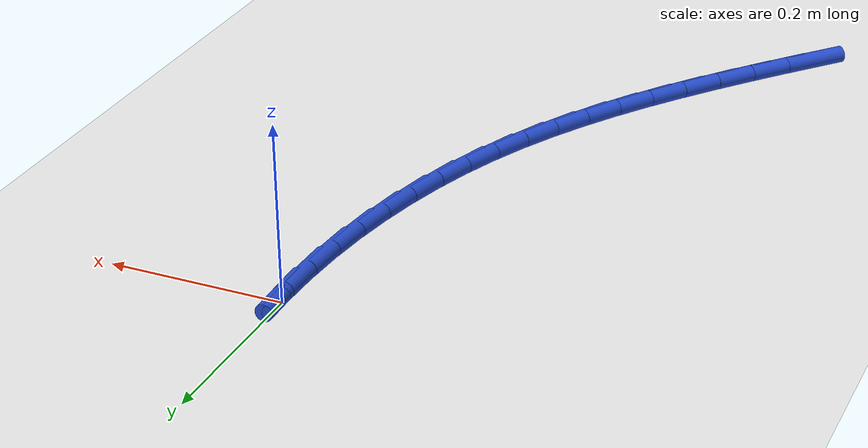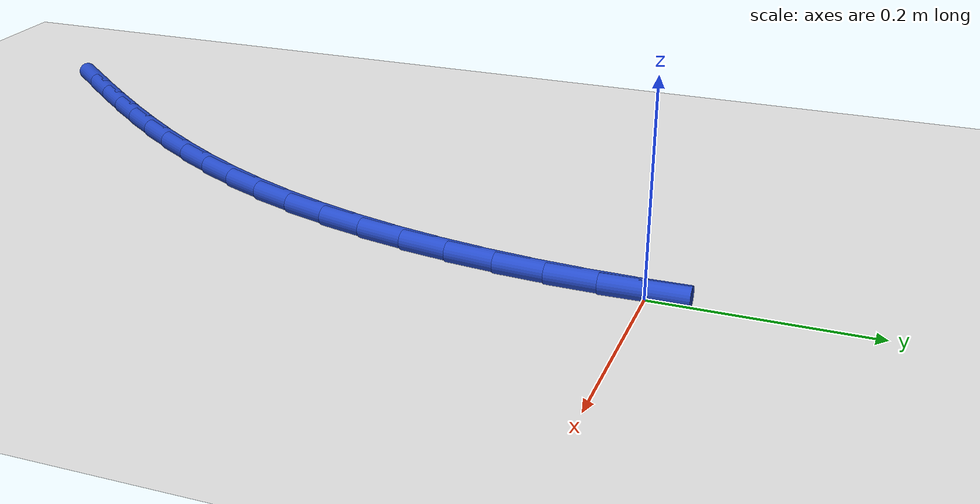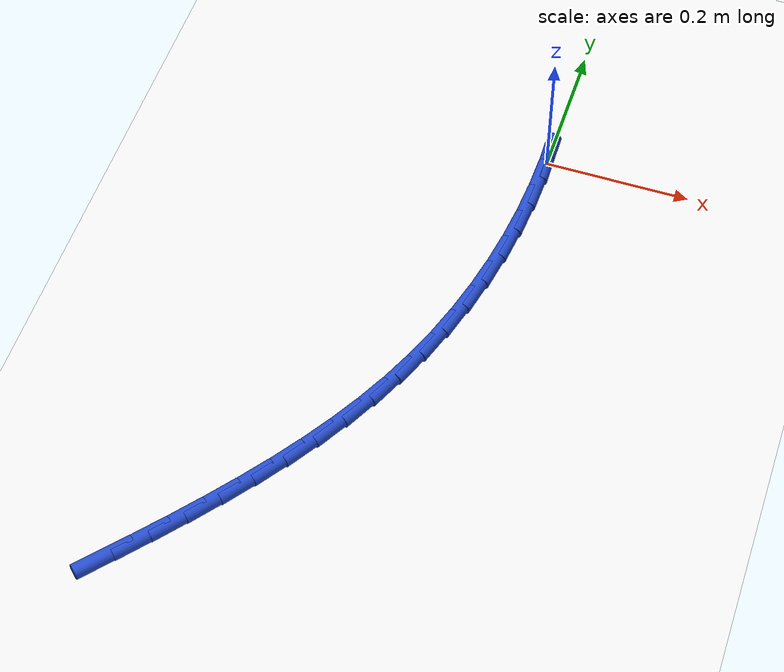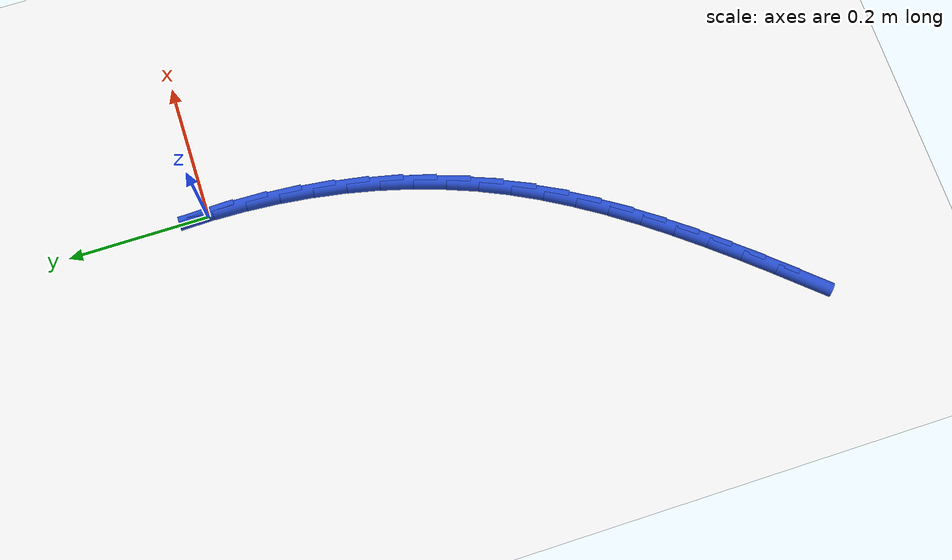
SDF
<sdf version="1.6">
 <world name="default">
  <model name="ground_plane">
   <static>1</static>
   <link name="link">
    <collision name="collision">
     <geometry><plane><normal>0 0 1</normal><size>100 100</size></plane></geometry>
     <surface><friction><ode><mu>100</mu><mu2>50</mu2></ode></friction></surface>
    </collision>
    <visual name="visual">
     <cast_shadows>0</cast_shadows>
     <geometry><plane><normal>0 0 1</normal><size>100 100</size></plane></geometry>
     <material>
      <script><uri>file://media/materials/scripts/gazebo.material</uri><name>Gazebo/WhiteGlow</name></script>
     </material>
    </visual>
   </link>
  </model>
  <model name="line">
   <link name="link_0">
    <pose>-3.122502256758253e-17 -4.163336342344337e-17 0.01 0 1.57 -1.548435429837742</pose>
    <collision name="collision">
     <geometry><cylinder><radius>0.01</radius><length>0.08</length></cylinder></geometry>
    </collision>
    <visual name="visual">
     <material>
      <script><name>Gazebo/Blue</name><uri>file://media/materials/scripts/gazebo.material</uri></script>
     </material>
     <geometry><cylinder><radius>0.01</radius><length>0.08</length></cylinder></geometry>
    </visual>
   </link>
   <link name="link_142">
    <pose>-0.33839167927704594 -0.75932212523554 0.01 0 1.57 0.8508655558774111</pose>
    <collision name="collision">
     <geometry><cylinder><radius>0.01</radius><length>0.08</length></cylinder></geometry>
    </collision>
    <visual name="visual">
     <material>
      <script><name>Gazebo/Blue</name><uri>file://media/materials/scripts/gazebo.material</uri></script>
     </material>
     <geometry><cylinder><radius>0.01</radius><length>0.08</length></cylinder></geometry>
    </visual>
   </link>
   <link name="link_143">
    <pose>-0.3051271265686652 -0.721389830018258 0.01 0 1.57 0.8671834940476374</pose>
    <collision name="collision">
     <geometry><cylinder><radius>0.01</radius><length>0.08</length></cylinder></geometry>
    </collision>
    <visual name="visual">
     <material>
      <script><name>Gazebo/Blue</name><uri>file://media/materials/scripts/gazebo.material</uri></script>
     </material>
     <geometry><cylinder><radius>0.01</radius><length>0.08</length></cylinder></geometry>
    </visual>
   </link>
   <link name="link_144">
    <pose>-0.27298532012583465 -0.6835083423311396 0.01 0 1.57 0.8845422815577062</pose>
    <collision name="collision">
     <geometry><cylinder><radius>0.01</radius><length>0.08</length></cylinder></geometry>
    </collision>
    <visual name="visual">
     <material>
      <script><name>Gazebo/Blue</name><uri>file://media/materials/scripts/gazebo.material</uri></script>
     </material>
     <geometry><cylinder><radius>0.01</radius><length>0.08</length></cylinder></geometry>
    </visual>
   </link>
   <link name="link_145">
    <pose>-0.24205438051916836 -0.6457442953697617 0.01 0 1.57 0.9069591196855974</pose>
    <collision name="collision">
     <geometry><cylinder><radius>0.01</radius><length>0.08</length></cylinder></geometry>
    </collision>
    <visual name="visual">
     <material>
      <script><name>Gazebo/Blue</name><uri>file://media/materials/scripts/gazebo.material</uri></script>
     </material>
     <geometry><cylinder><radius>0.01</radius><length>0.08</length></cylinder></geometry>
    </visual>
   </link>
   <link name="link_146">
    <pose>-0.2124653966707006 -0.6079198674702065 0.01 0 1.57 0.934666919012305</pose>
    <collision name="collision">
     <geometry><cylinder><radius>0.01</radius><length>0.08</length></cylinder></geometry>
    </collision>
    <visual name="visual">
     <material>
      <script><name>Gazebo/Blue</name><uri>file://media/materials/scripts/gazebo.material</uri></script>
     </material>
     <geometry><cylinder><radius>0.01</radius><length>0.08</length></cylinder></geometry>
    </visual>
   </link>
   <link name="link_147">
    <pose>-0.18435041482336056 -0.5698517905938039 0.01 0 1.57 0.9677398448724861</pose>
    <collision name="collision">
     <geometry><cylinder><radius>0.01</radius><length>0.08</length></cylinder></geometry>
    </collision>
    <visual name="visual">
     <material>
      <script><name>Gazebo/Blue</name><uri>file://media/materials/scripts/gazebo.material</uri></script>
     </material>
     <geometry><cylinder><radius>0.01</radius><length>0.08</length></cylinder></geometry>
    </visual>
   </link>
   <link name="link_148">
    <pose>-0.15784148122007569 -0.5313567967018814 0.01 0 1.57 1.0061498109638294</pose>
    <collision name="collision">
     <geometry><cylinder><radius>0.01</radius><length>0.08</length></cylinder></geometry>
    </collision>
    <visual name="visual">
     <material>
      <script><name>Gazebo/Blue</name><uri>file://media/materials/scripts/gazebo.material</uri></script>
     </material>
     <geometry><cylinder><radius>0.01</radius><length>0.08</length></cylinder></geometry>
    </visual>
   </link>
   <link name="link_149">
    <pose>-0.13307064210377398 -0.49225161775576765 0.01 0 1.57 1.0497349451719278</pose>
    <collision name="collision">
     <geometry><cylinder><radius>0.01</radius><length>0.08</length></cylinder></geometry>
    </collision>
    <visual name="visual">
     <material>
      <script><name>Gazebo/Blue</name><uri>file://media/materials/scripts/gazebo.material</uri></script>
     </material>
     <geometry><cylinder><radius>0.01</radius><length>0.08</length></cylinder></geometry>
    </visual>
   </link>
   <link name="link_150">
    <pose>-0.11016994371738355 -0.4523529857167909 0.01 0 1.57 1.0981701312075238</pose>
    <collision name="collision">
     <geometry><cylinder><radius>0.01</radius><length>0.08</length></cylinder></geometry>
    </collision>
    <visual name="visual">
     <material>
      <script><name>Gazebo/Blue</name><uri>file://media/materials/scripts/gazebo.material</uri></script>
     </material>
     <geometry><cylinder><radius>0.01</radius><length>0.08</length></cylinder></geometry>
    </visual>
   </link>
   <link name="link_151">
    <pose>-0.08927143230383205 -0.41147763254627884 0.01 0 1.57 1.1509181349223787</pose>
    <collision name="collision">
     <geometry><cylinder><radius>0.01</radius><length>0.08</length></cylinder></geometry>
    </collision>
    <visual name="visual">
     <material>
      <script><name>Gazebo/Blue</name><uri>file://media/materials/scripts/gazebo.material</uri></script>
     </material>
     <geometry><cylinder><radius>0.01</radius><length>0.08</length></cylinder></geometry>
    </visual>
   </link>
   <link name="link_152">
    <pose>-0.07050646425917687 -0.3694439047839302 0.01 0 1.57 1.2054311683432268</pose>
    <collision name="collision">
     <geometry><cylinder><radius>0.01</radius><length>0.08</length></cylinder></geometry>
    </collision>
    <visual name="visual">
     <material>
      <script><name>Gazebo/Blue</name><uri>file://media/materials/scripts/gazebo.material</uri></script>
     </material>
     <geometry><cylinder><radius>0.01</radius><length>0.08</length></cylinder></geometry>
    </visual>
   </link>
   <link name="link_153">
    <pose>-0.05395777437547643 -0.326183947253286 0.01 0 1.57 1.2583963382223153</pose>
    <collision name="collision">
     <geometry><cylinder><radius>0.01</radius><length>0.08</length></cylinder></geometry>
    </collision>
    <visual name="visual">
     <material>
      <script><name>Gazebo/Blue</name><uri>file://media/materials/scripts/gazebo.material</uri></script>
     </material>
     <geometry><cylinder><radius>0.01</radius><length>0.08</length></cylinder></geometry>
    </visual>
   </link>
   <link name="link_154">
    <pose>-0.03962825305549719 -0.281816779618061 0.01 0 1.57 1.3096843167303738</pose>
    <collision name="collision">
     <geometry><cylinder><radius>0.01</radius><length>0.08</length></cylinder></geometry>
    </collision>
    <visual name="visual">
     <material>
      <script><name>Gazebo/Blue</name><uri>file://media/materials/scripts/gazebo.material</uri></script>
     </material>
     <geometry><cylinder><radius>0.01</radius><length>0.08</length></cylinder></geometry>
    </visual>
   </link>
   <link name="link_155">
    <pose>-0.02751337056756474 -0.23647878827806756 0.01 0 1.57 1.3594818203364403</pose>
    <collision name="collision">
     <geometry><cylinder><radius>0.01</radius><length>0.08</length></cylinder></geometry>
    </collision>
    <visual name="visual">
     <material>
      <script><name>Gazebo/Blue</name><uri>file://media/materials/scripts/gazebo.material</uri></script>
     </material>
     <geometry><cylinder><radius>0.01</radius><length>0.08</length></cylinder></geometry>
    </visual>
   </link>
   <link name="link_156">
    <pose>-0.0176085971800045 -0.19030635963311696 0.01 0 1.57 1.4079850070076514</pose>
    <collision name="collision">
     <geometry><cylinder><radius>0.01</radius><length>0.08</length></cylinder></geometry>
    </collision>
    <visual name="visual">
     <material>
      <script><name>Gazebo/Blue</name><uri>file://media/materials/scripts/gazebo.material</uri></script>
     </material>
     <geometry><cylinder><radius>0.01</radius><length>0.08</length></cylinder></geometry>
    </visual>
   </link>
   <link name="link_157">
    <pose>-0.009909403161142435 -0.14343588008302316 0.01 0 1.57 1.4553953508277064</pose>
    <collision name="collision">
     <geometry><cylinder><radius>0.01</radius><length>0.08</length></cylinder></geometry>
    </collision>
    <visual name="visual">
     <material>
      <script><name>Gazebo/Blue</name><uri>file://media/materials/scripts/gazebo.material</uri></script>
     </material>
     <geometry><cylinder><radius>0.01</radius><length>0.08</length></cylinder></geometry>
    </visual>
   </link>
   <link name="link_158">
    <pose>-0.004411258779303942 -0.09600373602759765 0.01 0 1.57 1.5019166992899495</pose>
    <collision name="collision">
     <geometry><cylinder><radius>0.01</radius><length>0.08</length></cylinder></geometry>
    </collision>
    <visual name="visual">
     <material>
      <script><name>Gazebo/Blue</name><uri>file://media/materials/scripts/gazebo.material</uri></script>
     </material>
     <geometry><cylinder><radius>0.01</radius><length>0.08</length></cylinder></geometry>
    </visual>
   </link>
   <link name="link_159">
    <pose>-0.0011096343028146145 -0.04814631386665257 0.01 0 1.57 1.5477532772216425</pose>
    <collision name="collision">
     <geometry><cylinder><radius>0.01</radius><length>0.08</length></cylinder></geometry>
    </collision>
    <visual name="visual">
     <material>
      <script><name>Gazebo/Blue</name><uri>file://media/materials/scripts/gazebo.material</uri></script>
     </material>
     <geometry><cylinder><radius>0.01</radius><length>0.08</length></cylinder></geometry>
    </visual>
   </link>
   <link name="link_160">
    <pose>-4.336808689942018e-17 -2.220446049250313e-16 0.01 0 1.57 -1.548484243518596</pose>
    <collision name="collision">
     <geometry><cylinder><radius>0.01</radius><length>0.08</length></cylinder></geometry>
    </collision>
    <visual name="visual">
     <material>
      <script><name>Gazebo/Blue</name><uri>file://media/materials/scripts/gazebo.material</uri></script>
     </material>
     <geometry><cylinder><radius>0.01</radius><length>0.08</length></cylinder></geometry>
    </visual>
   </link>
  </model>
 </world>
</sdf>
